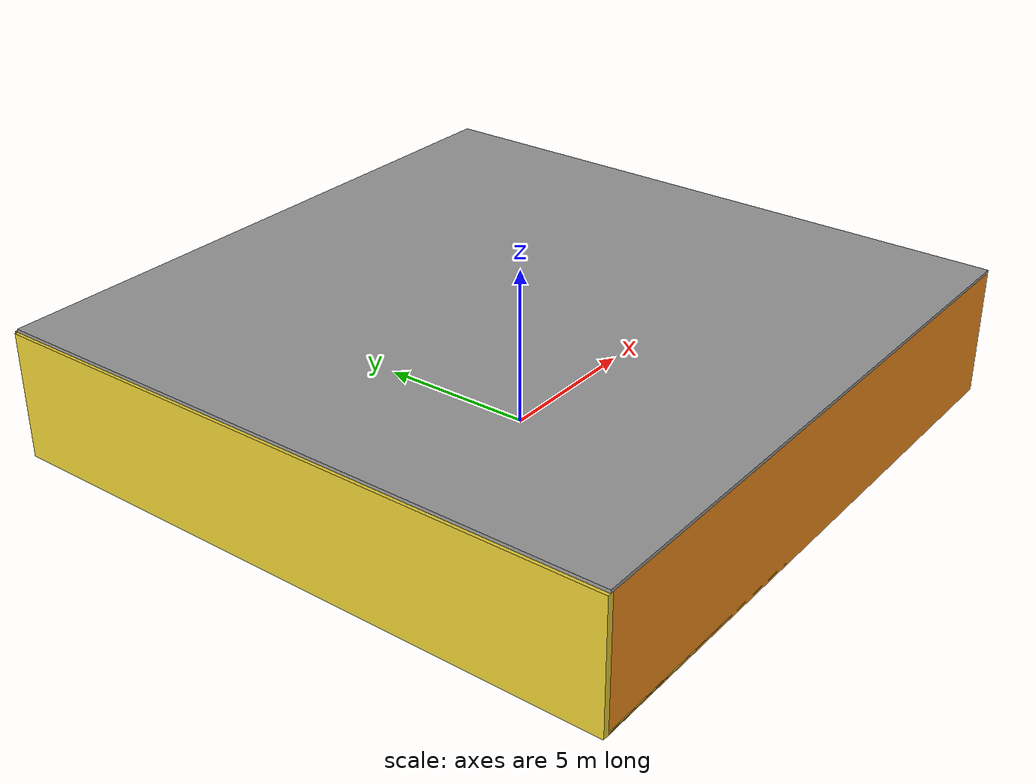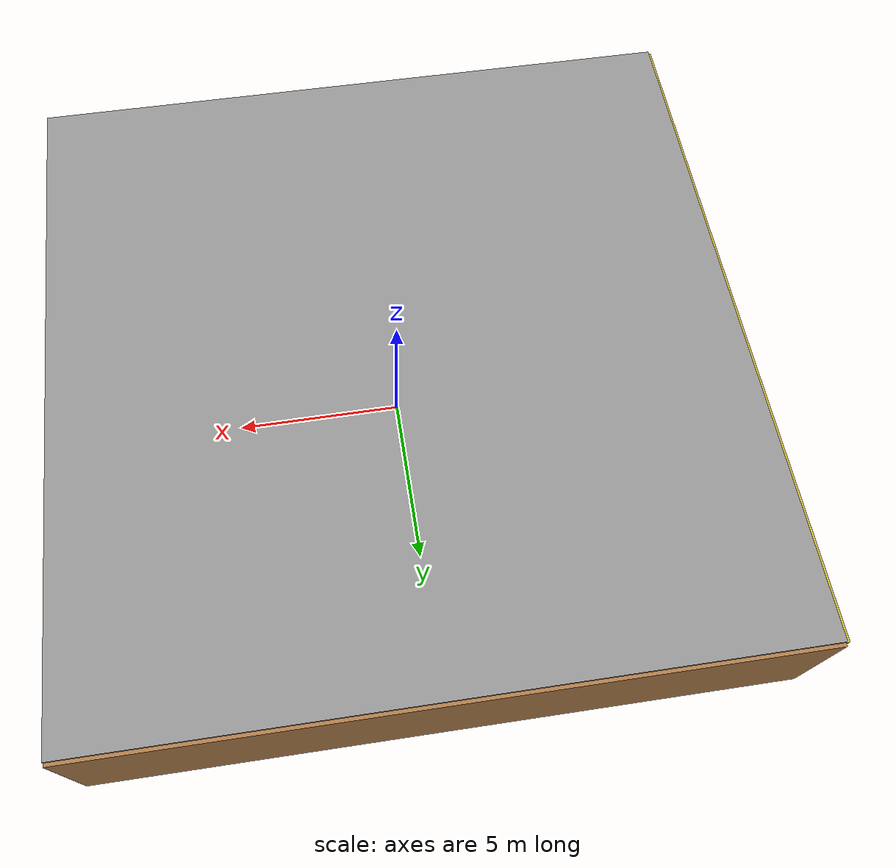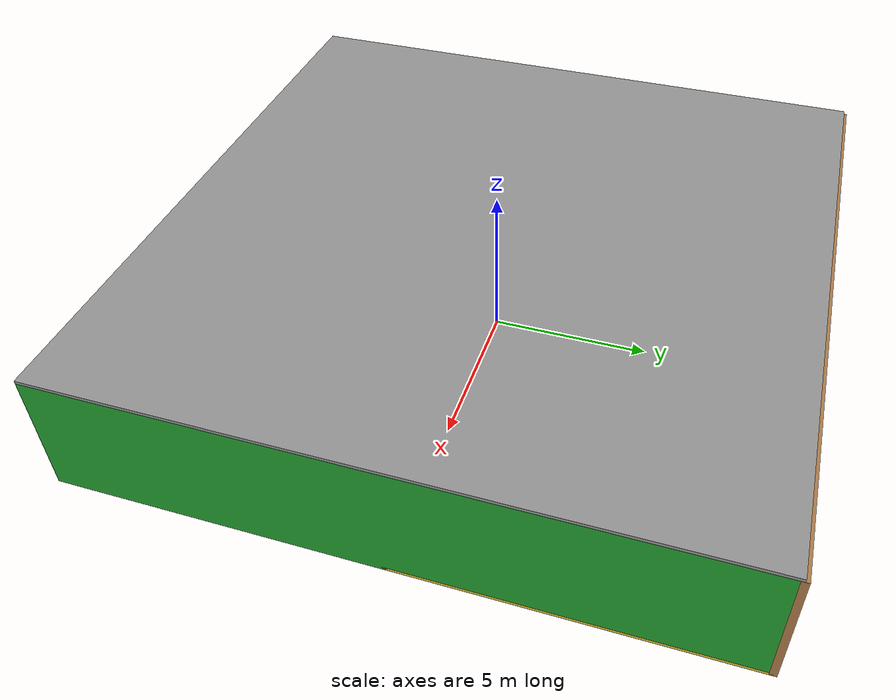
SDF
<sdf version="1.4">
 <world name="default">
  <physics type="ode">
   <max_step_size>0.001</max_step_size>
   <real_time_factor>1</real_time_factor>
   <real_time_update_rate>1000</real_time_update_rate>
   <gravity>0 0 -9.8</gravity>
  </physics>
  <scene><ambient>0.4 0.4 0.4 1</ambient><background>0.7 0.7 0.7 1</background><shadows>1</shadows></scene>
  <model name="Surrounding">
   <static>1</static>
   <link name="Ceiling">
    <collision name="Ceiling_Collision"><geometry><box><size>20 20 0.1</size></box></geometry></collision>
    <visual name="Ceiling_Visual">
     <geometry><box><size>20 20 0.1</size></box></geometry>
     <material>
      <script><uri>file://media/materials/scripts/gazebo.material</uri><name>Gazebo/Grey</name></script>
     </material>
    </visual>
    <pose>0 0 4.05 0 0 0</pose>
   </link>
   <link name="Wall_South">
    <collision name="Wall_South_Collision">
     <geometry><box><size>20 0 4</size></box></geometry>
     <pose>0 0 2 0 -0 0</pose>
    </collision>
    <visual name="Wall_South_Visual">
     <pose>0 0 2 0 -0 0</pose>
     <geometry><box><size>20 0 4</size></box></geometry>
     <material>
      <script><uri>file://media/materials/scripts/gazebo.material</uri><name>Gazebo/Orange</name></script>
     </material>
    </visual>
    <velocity_decay><linear>0</linear><angular>0</angular></velocity_decay>
    <pose>0 -10 0 0 -0 0</pose>
   </link>
   <link name="Wall_East">
    <collision name="Wall_21_Collision">
     <geometry><box><size>20 0 4</size></box></geometry>
     <pose>0 0 2 0 -0 0</pose>
    </collision>
    <visual name="Wall_21_Visual">
     <pose>0 0 2 0 -0 0</pose>
     <geometry><box><size>20 0 4</size></box></geometry>
     <material>
      <script><uri>file://media/materials/scripts/gazebo.material</uri><name>Gazebo/Green</name></script>
     </material>
    </visual>
    <velocity_decay><linear>0</linear><angular>0</angular></velocity_decay>
    <pose>10 0 0 0 -0 1.5708</pose>
   </link>
   <link name="Wall_North">
    <collision name="Wall_22_Collision">
     <geometry><box><size>20 0.2 4</size></box></geometry>
     <pose>0 0 2 0 -0 0</pose>
    </collision>
    <visual name="Wall_22_Visual">
     <pose>0 0 2 0 -0 0</pose>
     <geometry><box><size>20 0.2 4</size></box></geometry>
     <material>
      <script><uri>file://media/materials/scripts/gazebo.material</uri><name>Gazebo/WoodFloor</name></script>
     </material>
    </visual>
    <velocity_decay><linear>0</linear><angular>0</angular></velocity_decay>
    <pose>0 10 0 0 -0 0</pose>
   </link>
   <link name="Wall_West">
    <collision name="Wall_23_Collision">
     <geometry><box><size>20 0.2 4</size></box></geometry>
     <pose>0 0 2 0 -0 0</pose>
    </collision>
    <visual name="Wall_23_Visual">
     <pose>0 0 2 0 -0 0</pose>
     <geometry><box><size>20 0.2 4</size></box></geometry>
     <material>
      <script><uri>file://media/materials/scripts/gazebo.material</uri><name>Gazebo/ZincYellow</name></script>
     </material>
    </visual>
    <velocity_decay><linear>0</linear><angular>0</angular></velocity_decay>
    <pose>-10 0 0 0 0 -1.5708</pose>
   </link>
   <link name="Ground_link">
    <collision name="collision">
     <pose>0 0 .05 0 -0 0</pose>
     <geometry><box><size>20 20 0.1</size></box></geometry>
    </collision>
    <visual name="visual">
     <pose>0 0 .05 0 -0 0</pose>
     <geometry><box><size>20 20 0.1</size></box></geometry>
     <material>
      <script><uri>file://media/materials/scripts/gazebo.material</uri><name>Gazebo/ZincYellow</name></script>
     </material>
    </visual>
   </link>
   <static>1</static>
  </model>
  <spherical_coordinates>
   <surface_model>EARTH_WGS84</surface_model>
   <latitude_deg>0</latitude_deg>
   <longitude_deg>0</longitude_deg>
   <elevation>0</elevation>
   <heading_deg>0</heading_deg>
  </spherical_coordinates>
  <light name="lightball_0" type="diffuse">
   <diffuse>0.8 0.8 0.8 1</diffuse>
   <specular>0.2 0.2 0.2 1</specular>
   <attenuation>
    <range>100</range>
    <constant>0.7</constant>
    <linear>0.01</linear>
    <quadratic>0.001</quadratic>
   </attenuation>
   <direction>-0.5 0.1 -0.9</direction>
   <pose>-8.42849053706 -0.798910980383 3.30385411982 0 0 0</pose>
  </light>
  <light name="lightball_1" type="diffuse">
   <diffuse>0.8 0.8 0.8 1</diffuse>
   <specular>0.2 0.2 0.2 1</specular>
   <attenuation>
    <range>100</range>
    <constant>0.7</constant>
    <linear>0.01</linear>
    <quadratic>0.001</quadratic>
   </attenuation>
   <direction>-0.5 0.1 -0.9</direction>
   <pose>7.5140964909 5.64800368989 1.61805358966 0 0 0</pose>
  </light>
  <light name="lightball_2" type="diffuse">
   <diffuse>0.8 0.8 0.8 1</diffuse>
   <specular>0.2 0.2 0.2 1</specular>
   <attenuation>
    <range>100</range>
    <constant>0.7</constant>
    <linear>0.01</linear>
    <quadratic>0.001</quadratic>
   </attenuation>
   <direction>-0.5 0.1 -0.9</direction>
   <pose>-0.0806508733315 5.44407560444 1.46691507769 0 0 0</pose>
  </light>
  <light name="lightball_3" type="diffuse">
   <diffuse>0.8 0.8 0.8 1</diffuse>
   <specular>0.2 0.2 0.2 1</specular>
   <attenuation>
    <range>100</range>
    <constant>0.7</constant>
    <linear>0.01</linear>
    <quadratic>0.001</quadratic>
   </attenuation>
   <direction>-0.5 0.1 -0.9</direction>
   <pose>5.75152502014 2.921421664 1.47291904278 0 0 0</pose>
  </light>
  <light name="lightball_4" type="diffuse">
   <diffuse>0.8 0.8 0.8 1</diffuse>
   <specular>0.2 0.2 0.2 1</specular>
   <attenuation>
    <range>100</range>
    <constant>0.7</constant>
    <linear>0.01</linear>
    <quadratic>0.001</quadratic>
   </attenuation>
   <direction>-0.5 0.1 -0.9</direction>
   <pose>-0.459492890418 -1.62389801777 2.73055153262 0 0 0</pose>
  </light>
  <light name="lightball_5" type="diffuse">
   <diffuse>0.8 0.8 0.8 1</diffuse>
   <specular>0.2 0.2 0.2 1</specular>
   <attenuation>
    <range>100</range>
    <constant>0.7</constant>
    <linear>0.01</linear>
    <quadratic>0.001</quadratic>
   </attenuation>
   <direction>-0.5 0.1 -0.9</direction>
   <pose>-0.951485293456 -5.06947107252 0.537379115751 0 0 0</pose>
  </light>
  <light name="lightball_6" type="diffuse">
   <diffuse>0.8 0.8 0.8 1</diffuse>
   <specular>0.2 0.2 0.2 1</specular>
   <attenuation>
    <range>100</range>
    <constant>0.7</constant>
    <linear>0.01</linear>
    <quadratic>0.001</quadratic>
   </attenuation>
   <direction>-0.5 0.1 -0.9</direction>
   <pose>8.46817837792 5.11420989576 3.07206087271 0 0 0</pose>
  </light>
  <light name="lightball_7" type="diffuse">
   <diffuse>0.8 0.8 0.8 1</diffuse>
   <specular>0.2 0.2 0.2 1</specular>
   <attenuation>
    <range>100</range>
    <constant>0.7</constant>
    <linear>0.01</linear>
    <quadratic>0.001</quadratic>
   </attenuation>
   <direction>-0.5 0.1 -0.9</direction>
   <pose>-7.84916845159 -3.58157549723 1.92364965959 0 0 0</pose>
  </light>
  <light name="lightball_8" type="diffuse">
   <diffuse>0.8 0.8 0.8 1</diffuse>
   <specular>0.2 0.2 0.2 1</specular>
   <attenuation>
    <range>100</range>
    <constant>0.7</constant>
    <linear>0.01</linear>
    <quadratic>0.001</quadratic>
   </attenuation>
   <direction>-0.5 0.1 -0.9</direction>
   <pose>-2.11401079796 6.8148887126 2.13027146428 0 0 0</pose>
  </light>
  <light name="lightball_9" type="diffuse">
   <diffuse>0.8 0.8 0.8 1</diffuse>
   <specular>0.2 0.2 0.2 1</specular>
   <attenuation>
    <range>100</range>
    <constant>0.7</constant>
    <linear>0.01</linear>
    <quadratic>0.001</quadratic>
   </attenuation>
   <direction>-0.5 0.1 -0.9</direction>
   <pose>-1.12521967402 8.60279598646 3.46330845675 0 0 0</pose>
  </light>
  <light name="lightball_10" type="diffuse">
   <diffuse>0.8 0.8 0.8 1</diffuse>
   <specular>0.2 0.2 0.2 1</specular>
   <attenuation>
    <range>100</range>
    <constant>0.7</constant>
    <linear>0.01</linear>
    <quadratic>0.001</quadratic>
   </attenuation>
   <direction>-0.5 0.1 -0.9</direction>
   <pose>-1.9495302534 7.40085546565 3.68757258226 0 0 0</pose>
  </light>
  <light name="lightball_11" type="diffuse">
   <diffuse>0.8 0.8 0.8 1</diffuse>
   <specular>0.2 0.2 0.2 1</specular>
   <attenuation>
    <range>100</range>
    <constant>0.7</constant>
    <linear>0.01</linear>
    <quadratic>0.001</quadratic>
   </attenuation>
   <direction>-0.5 0.1 -0.9</direction>
   <pose>-1.04352466168 -8.362405166 1.24102620263 0 0 0</pose>
  </light>
  <light name="lightball_12" type="diffuse">
   <diffuse>0.8 0.8 0.8 1</diffuse>
   <specular>0.2 0.2 0.2 1</specular>
   <attenuation>
    <range>100</range>
    <constant>0.7</constant>
    <linear>0.01</linear>
    <quadratic>0.001</quadratic>
   </attenuation>
   <direction>-0.5 0.1 -0.9</direction>
   <pose>-4.34437888655 3.2873843139 3.25640422088 0 0 0</pose>
  </light>
  <include><uri>model://cabinet</uri><pose>-6.50238347254 0.344025511571 0 0 0 1.60267456765</pose></include>
  <include>
   <uri>model://construction_cone</uri>
   <pose>-3.96438772571 -0.465579693172 0 0 0 0.691724327887</pose>
  </include>
  <include><uri>model://table</uri><pose>-0.430735441069 -7.48801250589 0 0 0 0.8032379564</pose></include>
  <include><uri>model://cabinet</uri><pose>3.5408755138 -7.93081936521 0 0 0 1.29958388668</pose></include>
  <include><uri>model://table</uri><pose>5.11411141983 -1.70684264753 0 0 0 2.17924330453</pose></include>
 </world>
</sdf>

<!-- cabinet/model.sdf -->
<sdf version="1.5">
  <model name="cabinet">
    <static>true</static>
    <link name="cabinet_bottom_plate">
      <inertial>
        <pose>0 0 -1 0 0 0</pose>
        <inertia>
          <ixx>2.050000</ixx>
          <ixy>0</ixy>
          <ixz>0</ixz>
          <iyy>2.050000</iyy>
          <iyz>0</iyz>
          <izz>2.050000</izz>
        </inertia>
        <mass>25.000000</mass>
      </inertial>
      <collision name="cabinet_bottom_plate_geom">
        <pose>0 0 0.010000 0 0 0</pose>
        <geometry>
          <box>
            <size>0.450000 0.450000 0.020000</size>
          </box>
        </geometry>
      </collision>
      <visual name="cabinet_bottom_plate_geom_visual">
        <pose>0 0 0.010000 0 0 0</pose>
        <geometry>
          <box>
            <size>0.450000 0.450000 0.020000</size>
          </box>
        </geometry>
        <material>
          <script>
            <uri>model://media/materials/scripts/gazebo.material</uri>
            <name>Gazebo/Wood</name>
          </script>
        </material>
      </visual>
      <collision name="cabinet_bottom_plate_geom_cabinet_back_plate">
        <pose>0.235000 0 0.510000 0 0 0</pose>
        <geometry>
          <box>
            <size>0.020000 0.450000 1.020000</size>
          </box>
        </geometry>
      </collision>
      <visual name="cabinet_bottom_plate_geom_cabinet_back_plate_visual">
        <pose>0.235000 0 0.510000 0 0 0</pose>
        <geometry>
          <box>
            <size>0.020000 0.450000 1.020000</size>
          </box>
        </geometry>
        <material>
          <script>
            <uri>model://media/materials/scripts/gazebo.material</uri>
            <name>Gazebo/Wood</name>
          </script>
        </material>
      </visual>
      <collision name="cabinet_bottom_plate_geom_cabinet_left_plate">
        <pose>0 0.235000 0.510000 0 0 0</pose>
        <geometry>
          <box>
            <size>0.450000 0.020000 1.020000</size>
          </box>
        </geometry>
      </collision>
      <visual name="cabinet_bottom_plate_geom_cabinet_left_plate_visual">
        <pose>0 0.235000 0.510000 0 0 0</pose>
        <geometry>
          <box>
            <size>0.450000 0.020000 1.020000</size>
          </box>
        </geometry>
        <material>
          <script>
            <uri>model://media/materials/scripts/gazebo.material</uri>
            <name>Gazebo/Wood</name>
          </script>
        </material>
      </visual>
      <collision name="cabinet_bottom_plate_geom_cabinet_middle_plate">
        <pose>0 0 0.510000 0 0 0</pose>
        <geometry>
          <box>
            <size>0.450000 0.450000 0.020000</size>
          </box>
        </geometry>
      </collision>
      <visual name="cabinet_bottom_plate_geom_cabinet_middle_plate_visual">
        <pose>0 0 0.510000 0 0 0</pose>
        <geometry>
          <box>
            <size>0.450000 0.450000 0.020000</size>
          </box>
        </geometry>
        <material>
          <script>
            <uri>model://media/materials/scripts/gazebo.material</uri>
            <name>Gazebo/Wood</name>
          </script>
        </material>
      </visual>
      <collision name="cabinet_bottom_plate_geom_cabinet_right_plate">
        <pose>0 -0.235000 0.510000 0 0 0</pose>
        <geometry>
          <box>
            <size>0.450000 0.020000 1.020000</size>
          </box>
        </geometry>
      </collision>
      <visual name="cabinet_bottom_plate_geom_cabinet_right_plate_visual">
        <pose>0 -0.235000 0.510000 0 0 0</pose>
        <geometry>
          <box>
            <size>0.450000 0.020000 1.020000</size>
          </box>
        </geometry>
        <material>
          <script>
            <uri>model://media/materials/scripts/gazebo.material</uri>
            <name>Gazebo/Wood</name>
          </script>
        </material>
      </visual>
      <collision name="cabinet_bottom_plate_geom_cabinet_top_plate">
        <pose>0 0 1.010000 0 0 0</pose>
        <geometry>
          <box>
            <size>0.450000 0.450000 0.020000</size>
          </box>
        </geometry>
      </collision>
      <visual name="cabinet_bottom_plate_geom_cabinet_top_plate_visual">
        <pose>0 0 1.010000 0 0 0</pose>
        <geometry>
          <box>
            <size>0.450000 0.450000 0.020000</size>
          </box>
        </geometry>
        <material>
          <script>
            <uri>model://media/materials/scripts/gazebo.material</uri>
            <name>Gazebo/Wood</name>
          </script>
        </material>
      </visual>
    </link>
  </model>
</sdf>

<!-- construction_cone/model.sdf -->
<sdf version="1.5">
  <model name="Construction Cone">
    <link name="link">
      <collision name="collision">
        <geometry>
          <mesh>
            <scale>10 10 10</scale>
            <uri>file://isr-testbed/construction_cone/meshes/construction_cone.dae</uri>
          </mesh>
        </geometry>
      </collision>
      <visual name="visual">
        <geometry>
          <mesh>
            <scale>10 10 10</scale>
            <uri>file://isr-testbed/construction_cone/meshes/construction_cone.dae</uri>
          </mesh>
        </geometry>
      </visual>
    </link>
  </model>
</sdf>

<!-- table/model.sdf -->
<sdf version="1.5">
  <model name="table">
    <static>true</static>
    <link name="link">
      <collision name="surface">
        <pose>0 0 1.0 0 0 0</pose>
        <geometry>
          <box>
            <size>1.5 0.8 0.03</size>
          </box>
        </geometry>
        <surface>
          <friction>
            <ode>
              <mu>0.6</mu>
              <mu2>0.6</mu2>
            </ode>
          </friction>
        </surface>
      </collision>
      <visual name="visual1">
        <pose>0 0 1.0 0 0 0</pose>
        <geometry>
          <box>
            <size>1.5 0.8 0.03</size>
          </box>
        </geometry>
        <material>
          <script>
            <uri>model://media/materials/scripts/gazebo.material</uri>
            <name>Gazebo/Wood</name>
          </script>
        </material>
      </visual>
      <collision name="front_left_leg">
        <pose>0.68 0.38 0.5 0 0 0</pose>
        <geometry>
          <cylinder>
            <radius>0.02</radius>
            <length>1.0</length>
          </cylinder>
        </geometry>
      </collision>
      <visual name="front_left_leg">
        <pose>0.68 0.38 0.5 0 0 0</pose>
        <geometry>
          <cylinder>
            <radius>0.02</radius>
            <length>1.0</length>
          </cylinder>
        </geometry>
        <material>
          <script>
            <uri>model://media/materials/scripts/gazebo.material</uri>
            <name>Gazebo/Grey</name>
          </script>
        </material>
      </visual>
      <collision name="front_right_leg">
        <pose>0.68 -0.38 0.5 0 0 0</pose>
        <geometry>
          <cylinder>
            <radius>0.02</radius>
            <length>1.0</length>
          </cylinder>
        </geometry>
      </collision>
      <visual name="front_right_leg">
        <pose>0.68 -0.38 0.5 0 0 0</pose>
        <geometry>
          <cylinder>
            <radius>0.02</radius>
            <length>1.0</length>
          </cylinder>
        </geometry>
        <material>
          <script>
            <uri>model://media/materials/scripts/gazebo.material</uri>
            <name>Gazebo/Grey</name>
          </script>
        </material>
      </visual>
      <collision name="back_right_leg">
        <pose>-0.68 -0.38 0.5 0 0 0</pose>
        <geometry>
          <cylinder>
            <radius>0.02</radius>
            <length>1.0</length>
          </cylinder>
        </geometry>
      </collision>
      <visual name="back_right_leg">
        <pose>-0.68 -0.38 0.5 0 0 0</pose>
        <geometry>
          <cylinder>
            <radius>0.02</radius>
            <length>1.0</length>
          </cylinder>
        </geometry>
        <material>
          <script>
            <uri>model://media/materials/scripts/gazebo.material</uri>
            <name>Gazebo/Grey</name>
          </script>
        </material>
      </visual>
      <collision name="back_left_leg">
        <pose>-0.68 0.38 0.5 0 0 0</pose>
        <geometry>
          <cylinder>
            <radius>0.02</radius>
            <length>1.0</length>
          </cylinder>
        </geometry>
      </collision>
      <visual name="back_left_leg">
        <pose>-0.68 0.38 0.5 0 0 0</pose>
        <geometry>
          <cylinder>
            <radius>0.02</radius>
            <length>1.0</length>
          </cylinder>
        </geometry>
        <material>
          <script>
            <uri>model://media/materials/scripts/gazebo.material</uri>
            <name>Gazebo/Grey</name>
          </script>
        </material>
      </visual>
    </link>
  </model>
</sdf>
